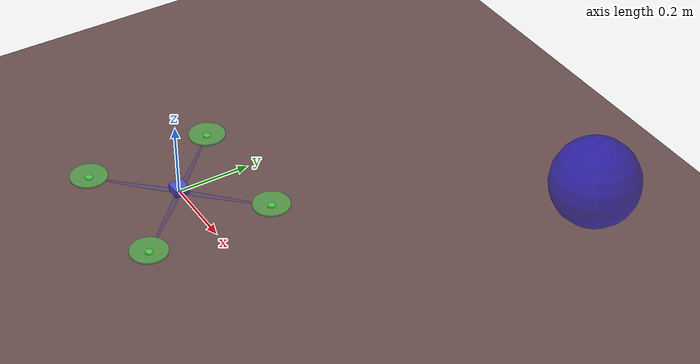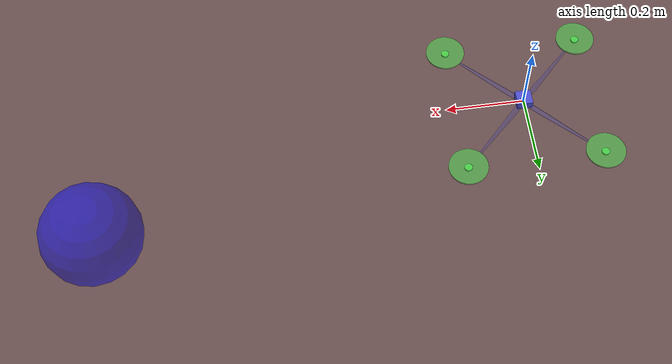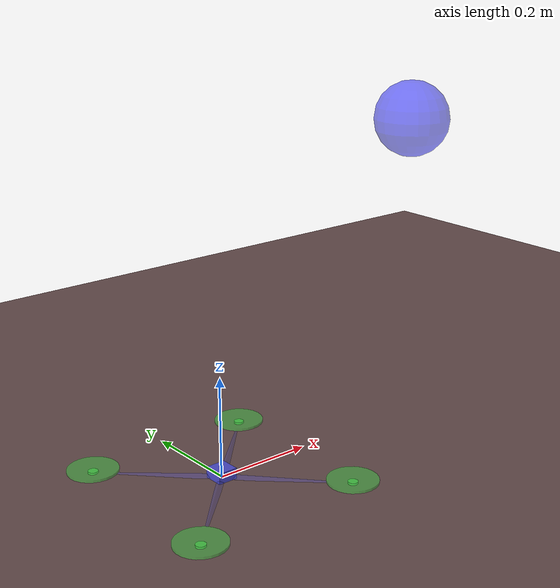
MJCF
<mujoco model="quadrotor">

    <compiler angle="degree" inertiafromgeom="true" coordinate="local"/>
    <option	timestep="0.01" gravity="0 0 -9.81" density="1" viscosity="1e-5" integrator="RK4">
        <flag warmstart="disable" />
    </option>

    <default>
        <joint armature="1" damping="1" limited="true"/>
        <geom conaffinity="0" condim="3" density="5.0" friction="1 0.5 0.5" margin="0.01" rgba="0.8 0.6 0.4 1"/>
    </default>

    <asset>
        <texture name="texplane" builtin="checker" height="100" width="100" rgb1="0 0 0" rgb2="0.8 0.8 0.8" type="2d"/>
        <material name="MatPlane" reflectance="0.5" shininess="1" specular="1" texrepeat="60 60" texture="texplane"/>
    </asset>

    <worldbody>
        <light cutoff="100" diffuse="1 1 1" dir="-0 0 -1.3" directional="true" exponent="1" pos="0 0 1.3" specular=".1 .1 .1"/>
        <geom conaffinity="1" condim="3" material="MatPlane" name="floor" pos="0 0 0" rgba="0.4 0.3 0.3 1" size="5 5 0.2" type="plane"/>

        <body name="core" pos="0 0 0">
            <inertial pos="0 0 0" mass="0.1" fullinertia="0.0003046072550073776 0.0003046072550073776 0.000608381176681422 0.0 0.0 0.0"/>
            <joint name="root" type="free" damping="0" armature="0" pos="0 0 0" limited="false"/>

            <geom name="core_geom" type="box" pos="0 0 0" quat="1 0 0 0" size=".02 .02 .02" rgba=".3 .3 .8 1"/>

            <site type="box" fromto="0 0 0 0.17429111327719618  0.17429111327719618 -0.0075" rgba=".3 .3 .8 0.3"/>
            <site name="FR" type="cylinder" pos="0.17429111327719618  0.17429111327719618 0.0" size=".01 .0025" quat="1.0 0.0 0.0 0.0" rgba=".3 .8 .3 1"/>
            <geom type="cylinder" pos="0.17429111327719618  0.17429111327719618 0.005" size=".05 .0025" quat="1.0 0.0 0.0 0.0" rgba=".3 .8 .3 0.6" mass="0.005"/>

            <site type="box" fromto="0 0 0 0.17429111327719618  -0.17429111327719618 -0.0075" rgba=".3 .3 .8 0.3"/>
            <site name="BR" type="cylinder" pos="0.17429111327719618  -0.17429111327719618 0.0" size=".01 .0025" quat="1.0 0.0 0.0 0.0" rgba=".3 .8 .3 1"/>
            <geom type="cylinder" pos="0.17429111327719618  -0.17429111327719618 0.005" size=".05 .0025" quat="1.0 0.0 0.0 0.0" rgba=".3 .8 .3 0.6" mass="0.005"/>

            <site type="box" fromto="0 0 0 -0.17429111327719618  -0.17429111327719618 -0.0075" rgba=".3 .3 .8 0.3"/>
            <site name="BL" type="cylinder" pos="-0.17429111327719618  -0.17429111327719618 0.0" size=".01 .0025" quat="1.0 0.0 0.0 0.0" rgba=".3 .8 .3 1"/>
            <geom type="cylinder" pos="-0.17429111327719618  -0.17429111327719618 0.005" size=".05 .0025" quat="1.0 0.0 0.0 0.0" rgba=".3 .8 .3 0.6" mass="0.005"/>

            <site type="box" fromto="0 0 0 -0.17429111327719618  0.17429111327719618 -0.0075" rgba=".3 .3 .8 0.3"/>
            <site name="FL" type="cylinder" pos="-0.17429111327719618  0.17429111327719618 0.0" size=".01 .0025" quat="1.0 0.0 0.0 0.0" rgba=".3 .8 .3 1"/>
            <geom type="cylinder" pos="-0.17429111327719618  0.17429111327719618 0.005" size=".05 .0025" quat="1.0 0.0 0.0 0.0" rgba=".3 .8 .3 0.6" mass="0.005"/>

        </body>

        <site name="z_axis" type="sphere" pos="1.0 0.5 0.5" size=".1 .1 .1" quat="0 0 0 1" rgba="0 0 1 0.5"/>

    </worldbody>

    <actuator>

        <motor gear="0 0 1 0 0 1e-05" site="FR"/>

        <motor gear="0 0 1 0 0 -1e-05" site="BR"/>

        <motor gear="0 0 1 0 0 1e-05" site="BL"/>

        <motor gear="0 0 1 0 0 -1e-05" site="FL"/>

    </actuator>

</mujoco>
